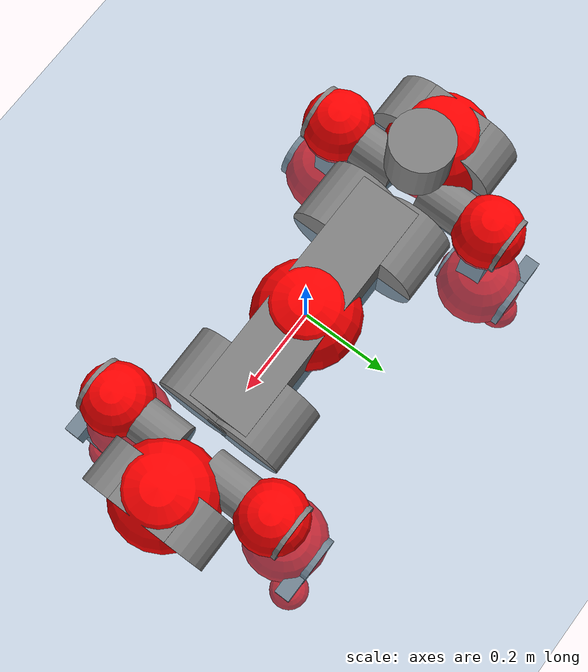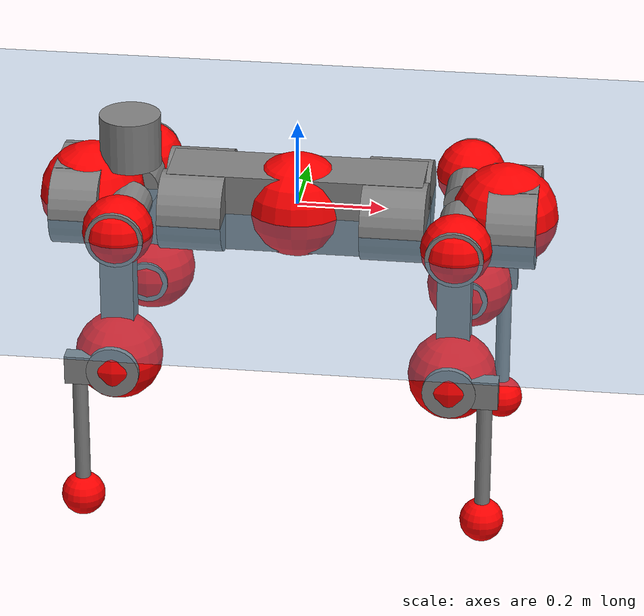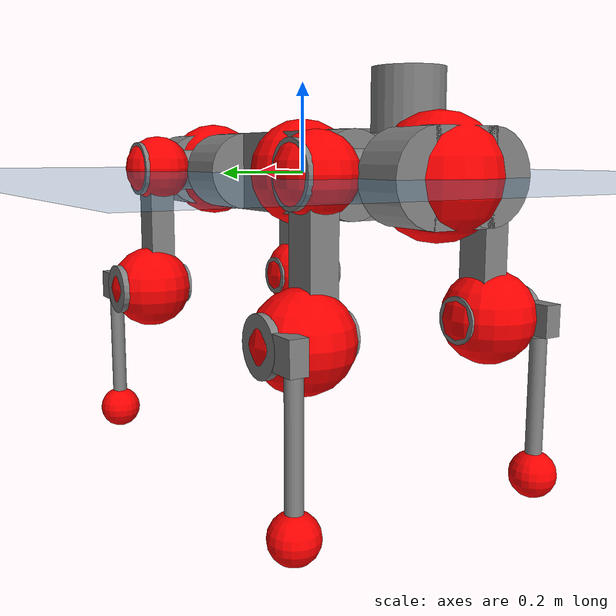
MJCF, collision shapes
<mujoco model="anymal_c">
  <compiler angle="radian" assetdir="assets" balanceinertia="true" inertiafromgeom="false"/>

  <option timestep="0.005" density="1.2" viscosity="2e-05"/>

  <size nkey="1"/>

  <visual>
    <quality shadowsize="8192"/>
    <map shadowclip="0.5"/>
  </visual>

  <default>
    <default class="/">
      <material specular="0" shininess="0.25"/>
      <geom contype="0" conaffinity="0" group="1" solref="-1000 -80"/>
      <site size="0.01 0.005 0.005" group="5"/>
      <general forcelimited="true" forcerange="-80 80" biastype="affine" gainprm="80" biasprm="0 -80 -2"/>
      <default class="anymal_c">
        <joint armature="0.01" damping="0.01" frictionloss="0.1"/>
        <default class="visual">
          <geom type="mesh" group="2"/>
          <default class="visual_zflip"/>
        </default>
        <default class="collision">
          <geom type="cylinder" group="3"/>
          <default class="foot">
            <geom size="0.03 0 0" type="sphere" condim="6" priority="1" friction="0.8 0.02 0.01" solimp="0.015 1 0.03"/>
          </default>
        </default>
      </default>
      <default class="reward_collision_sphere">
        <geom group="5" rgba="1 0 0 1"/>
      </default>
    </default>
  </default>

  <asset>
    <texture type="skybox" colorspace="auto" name="//unnamed_texture_0" builtin="gradient" rgb1="0.95 0.95 0.95" rgb2="0.95 0.95 0.95" width="100" height="600"/>
    <texture type="2d" colorspace="auto" name="texplane" builtin="checker" rgb1="0.345 0.575 0.748" rgb2="0.345 0.575 0.748" markrgb="1 1 1" width="512" height="512"/>
    <texture type="2d" colorspace="linear" name="base" file="base.png"/>
    <texture type="2d" colorspace="linear" name="top_shell" file="top_shell.png"/>
    <texture type="2d" colorspace="linear" name="bottom_shell" file="bottom_shell.png"/>
    <texture type="2d" colorspace="linear" name="remote" file="remote.png"/>
    <texture type="2d" colorspace="linear" name="hatch" file="hatch.png"/>
    <texture type="2d" colorspace="linear" name="handle" file="handle.png"/>
    <texture type="2d" colorspace="linear" name="face" file="face.png"/>
    <texture type="2d" colorspace="linear" name="battery" file="battery.png"/>
    <texture type="2d" colorspace="linear" name="lidar_cage" file="lidar_cage.png"/>
    <texture type="2d" colorspace="linear" name="depth_camera" file="depth_camera.png"/>
    <texture type="2d" colorspace="linear" name="wide_angle_camera" file="wide_angle_camera.png"/>
    <texture type="2d" colorspace="linear" name="lidar" file="lidar.png"/>
    <texture type="2d" colorspace="linear" name="drive" file="drive.png"/>
    <texture type="2d" colorspace="linear" name="hip_l" file="hip_l.png"/>
    <texture type="2d" colorspace="linear" name="shank_l" file="shank_l.png"/>
    <texture type="2d" colorspace="linear" name="foot" file="foot.png"/>
    <texture type="2d" colorspace="linear" name="thigh" file="thigh.png"/>
    <texture type="2d" colorspace="linear" name="shank_r" file="shank_r.png"/>
    <texture type="2d" colorspace="linear" name="hip_r" file="hip_r.png"/>
    <material name="MatPlane" class="/" texture="texplane" texuniform="true" texrepeat="2 2" specular="0.9" shininess="0.5"/>
    <material name="black_plastic" class="/" rgba="0.007 0.007 0.007 1"/>
    <material name="green" class="/" rgba="0.052 0.178 0.033 1"/>
    <material name="red" class="/" rgba="0.178 0.006 0.005 1"/>
    <material name="yellow" class="/" rgba="0.178 0.119 0.006 1"/>
    <material name="lwl" class="/" rgba="0.8 0.8 0.8 1"/>
    <material name="base" class="/" texture="base"/>
    <material name="top_shell" class="/" texture="top_shell"/>
    <material name="bottom_shell" class="/" texture="bottom_shell"/>
    <material name="hip_l" class="/" texture="hip_l"/>
    <material name="thigh" class="/" texture="thigh"/>
    <material name="shank_l" class="/" texture="shank_l"/>
    <material name="foot" class="/" texture="foot"/>
    <material name="hip_r" class="/" texture="hip_r"/>
    <material name="shank" class="/" texture="shank_r"/>
    <material name="hatch" class="/" texture="hatch"/>
    <material name="remote" class="/" texture="remote"/>
    <material name="handle" class="/" texture="handle"/>
    <material name="face" class="/" texture="face"/>
    <material name="depth_camera" class="/" texture="depth_camera"/>
    <material name="wide_angle_camera" class="/" texture="wide_angle_camera"/>
    <material name="battery" class="/" texture="battery"/>
    <material name="lidar_cage" class="/" texture="lidar_cage"/>
    <material name="lidar" class="/" texture="lidar"/>
    <material name="drive" class="/" texture="drive"/>
    <mesh name="base_0" class="/" file="base_0.obj"/>
    <mesh name="base_1" class="/" file="base_1.obj"/>
    <mesh name="base_2" class="/" file="base_2.obj"/>
    <mesh name="base_3" class="/" file="base_3.obj"/>
    <mesh name="base_4" class="/" file="base_4.obj"/>
    <mesh name="base_5" class="/" file="base_5.obj"/>
    <mesh name="top_shell" class="/" file="top_shell.obj"/>
    <mesh name="bottom_shell" class="/" file="bottom_shell.obj"/>
    <mesh name="remote" class="/" file="remote.obj"/>
    <mesh name="handle" class="/" file="handle.obj"/>
    <mesh name="face" class="/" file="face.obj"/>
    <mesh name="wide_angle_camera" class="/" file="wide_angle_camera.obj"/>
    <mesh name="depth_camera" class="/" file="depth_camera.obj"/>
    <mesh name="battery" class="/" file="battery.obj"/>
    <mesh name="lidar_cage" class="/" file="lidar_cage.obj"/>
    <mesh name="lidar" class="/" file="lidar.obj"/>
    <mesh name="drive" class="/" file="drive.obj"/>
    <mesh name="hip_l" class="/" file="hip_l.obj"/>
    <mesh name="thigh" class="/" file="thigh.obj"/>
    <mesh name="shank_l" class="/" file="shank_l.obj"/>
    <mesh name="foot" class="/" file="foot.obj"/>
    <mesh name="hip_r" class="/" file="hip_r.obj"/>
    <mesh name="hatch" class="/" file="hatch.obj"/>
    <mesh name="shank_r" class="/" file="shank_r.obj"/>
  </asset>

  <worldbody>
    <geom name="floor" class="/" size="100 100 0.125" type="plane" group="0" material="MatPlane"/>
    <light name="toplight_shadow" class="/" pos="0 0 5" dir="0.0990148 0.0990148 -0.990148" type="directional" ambient="0.04 0.04 0.04" diffuse="0.55 0.55 0.55" specular="0.12 0.12 0.12"/>
    <light name="toplight_fill" class="/" pos="0 0 5" dir="0.0990148 0.0990148 -0.990148" type="directional" castshadow="false" ambient="0.04 0.04 0.04" diffuse="0.3 0.3 0.3" specular="0.08 0.08 0.08"/>
    <body name="trunk" childclass="anymal_c" pos="-0.000181211 0.000851697 -8.25812e-05" quat="1 -0.000388859 -3.82881e-05 -0.000157882">
      <inertial pos="0.00340236 -0.000941051 0.0509782" quat="0.500702 0.503242 0.497479 0.498558" mass="18.6098" diaginertia="0.788922 0.360519 0.270868"/>
      <joint name="//unnamed_joint_0" type="free" armature="0" damping="0" frictionloss="0"/>
      <geom name="//unnamed_geom_1" class="visual" material="green" mesh="base_0"/>
      <geom name="//unnamed_geom_2" class="visual" material="yellow" mesh="base_1"/>
      <geom name="//unnamed_geom_3" class="visual" material="red" mesh="base_2"/>
      <geom name="//unnamed_geom_4" class="visual" material="black_plastic" mesh="base_3"/>
      <geom name="//unnamed_geom_5" class="visual" material="lwl" mesh="base_4"/>
      <geom name="//unnamed_geom_6" class="visual" material="base" mesh="base_5"/>
      <geom name="trunk_1" class="collision" size="0.289728 0.0699344 0.0899156" type="box"/>
      <geom name="trunk_2" class="collision" size="0.0899156 0.072432" pos="0.228019 0.0629565 0" quat="0.707107 0 0.707107 0"/>
      <geom name="trunk_3" class="collision" size="0.0899156 0.072432" pos="-0.228019 0.0629565 0" quat="0.707107 0 0.707107 0"/>
      <geom name="trunk_4" class="collision" size="0.0899156 0.072432" pos="0.228019 -0.0629565 0" quat="0.707107 0 0.707107 0"/>
      <geom name="trunk_5" class="collision" size="0.0899156 0.072432" pos="-0.228019 -0.0629565 0" quat="0.707107 0 0.707107 0"/>
      <geom name="//unnamed_geom_12" class="visual" material="top_shell" mesh="top_shell"/>
      <geom name="//unnamed_geom_13" class="visual" material="bottom_shell" mesh="bottom_shell"/>
      <geom name="//unnamed_geom_14" class="visual" material="remote" mesh="remote"/>
      <geom name="//unnamed_geom_15" class="visual" material="handle" mesh="handle"/>
      <geom name="//unnamed_geom_16" class="visual" pos="0.434547 0 0" quat="1 0 0 0" material="face" mesh="face"/>
      <geom name="trunk_6" class="collision" size="0.0549484 0.0699344 0.0899156" pos="0.492207 0 0" type="box"/>
      <geom name="//unnamed_geom_18" class="collision" size="0.0899156 0.0549484" pos="0.492207 0.0629565 0" quat="0.707107 0 0.707107 0"/>
      <geom name="//unnamed_geom_19" class="collision" size="0.0899156 0.0549484" pos="0.492207 -0.0629565 0" quat="0.707107 0 0.707107 0"/>
      <geom name="//unnamed_geom_20" class="visual" pos="0.483978 0 -0.0306519" quat="0.965926 0 0.258819 0" material="depth_camera" mesh="depth_camera"/>
      <geom name="//unnamed_geom_21" class="visual" pos="0.537811 0 0.0157102" material="wide_angle_camera" mesh="wide_angle_camera"/>
      <geom name="//unnamed_geom_22" class="visual_zflip" pos="-0.434547 0 0" quat="0 0 0 1" material="face" mesh="face"/>
      <geom name="trunk_7" class="collision" size="0.0549484 0.0699344 0.0899156" pos="-0.492207 0 0" quat="0 0 0 1" type="box"/>
      <geom name="//unnamed_geom_24" class="collision" size="0.0899156 0.0549484" pos="-0.492207 -0.0629565 0" quat="0 -0.707107 0 0.707107"/>
      <geom name="//unnamed_geom_25" class="collision" size="0.0899156 0.0549484" pos="-0.492207 0.0629565 0" quat="0 -0.707107 0 0.707107"/>
      <geom name="//unnamed_geom_26" class="visual" pos="-0.483978 0 -0.0306519" quat="0 -0.258819 0 0.965926" material="depth_camera" mesh="depth_camera"/>
      <geom name="//unnamed_geom_27" class="visual_zflip" pos="-0.537811 0 0.0157102" quat="0 0 0 1" material="wide_angle_camera" mesh="wide_angle_camera"/>
      <geom name="//unnamed_geom_28" class="visual" material="battery" mesh="battery"/>
      <geom name="//unnamed_geom_29" class="visual" pos="0 0.0668116 0.0304781" quat="0.683013 -0.183013 0.183013 0.683013" material="depth_camera" mesh="depth_camera"/>
      <geom name="//unnamed_geom_30" class="visual" pos="0 -0.0668116 0.0304781" quat="0.683013 0.183013 0.183013 -0.683013" material="depth_camera" mesh="depth_camera"/>
      <geom name="//unnamed_geom_31" class="visual" pos="-0.381605 0 0.077134" quat="1 0 0 0" material="lidar_cage" mesh="lidar_cage"/>
      <geom name="trunk_8" class="collision" size="0.0699344 0.0599437" pos="-0.381605 0 0.140101"/>
      <geom name="//unnamed_geom_33" class="visual" pos="-0.381605 -5.85326e-05 0.149231" quat="0.707107 0 0 -0.707107" material="lidar" mesh="lidar"/>
      <geom name="//unnamed_geom_34" class="visual" pos="0.314405 0.0935887 -2.58861e-09" quat="0.258819 0.965926 0 0" material="drive" mesh="drive"/>
      <geom name="//unnamed_geom_35" class="visual" pos="0.314405 -0.0935887 2.58861e-09" quat="0.258819 -0.965926 0 0" material="drive" mesh="drive"/>
      <geom name="//unnamed_geom_36" class="visual" pos="-0.314405 0.0935887 2.58861e-09" quat="0 0 0.965926 -0.258819" material="drive" mesh="drive"/>
      <geom name="//unnamed_geom_37" class="visual" pos="-0.314405 -0.0935887 -2.58861e-09" quat="0 0 -0.965926 -0.258819" material="drive" mesh="drive"/>
      <geom name="//unnamed_geom_38" class="visual" pos="0.12161 0 0.0766093" quat="1 0 0 0" material="hatch" mesh="hatch"/>
      <geom name="//unnamed_geom_39" class="reward_collision_sphere" size="0.119887"/>
      <geom name="//unnamed_geom_40" class="reward_collision_sphere" size="0.119887" pos="0.471764 0 0"/>
      <geom name="//unnamed_geom_41" class="reward_collision_sphere" size="0.119887" pos="-0.471764 0 0"/>
      <site name="imu" pos="0.261064 0.00594474 0.0470035" size="0.00999062"/>
      <camera name="track" pos="0 -1.79876 0" quat="0.707107 0.707107 0 0" mode="trackcom"/>
      <camera name="ego_camera" pos="0.471764 0 -0.0419777" quat="-0.5 -0.5 0.5 0.5"/>
      <body name="LF_HIP" pos="0.31495 0.0939711 -0.00011568" quat="0.258882 0.965909 -0.000101424 4.4435e-05">
        <inertial pos="0.0593983 -0.0130534 -0.00870695" quat="-0.130027 0.70977 -0.14083 0.677854" mass="2.78985" diaginertia="0.0074913 0.00293752 0.00422999"/>
        <joint name="LF_HAA" pos="0 0 0" axis="1 -0.000344531 0.000440214" range="-0.702707 0.478873" armature="0.0101258" damping="0.00885941" frictionloss="0.0989345"/>
        <geom name="//unnamed_geom_42" class="visual" pos="0 -0.000152276 2.50112e-05" quat="0.258819 -0.965926 0 0" material="hip_l" mesh="hip_l"/>
        <geom name="//unnamed_geom_43" class="visual" pos="0.0627971 -0.0741837 -0.0439399" quat="0.183013 -0.683013 0.683013 0.183013" material="drive" mesh="drive"/>
        <geom name="//unnamed_geom_44" class="collision" size="0.0499531 0.0699344" pos="0.0627971 -0.0107564 -0.0072464" quat="-0.353553 -0.612372 0.612372 -0.353553"/>
        <body name="LF_THIGH" pos="0.0628732 -0.0664832 -0.0443554" quat="0.182988 -0.683105 0.682811 0.183444">
          <inertial pos="0.0322948 0.00105267 -0.2582" quat="0.993375 -0.0046258 -0.0786929 0.0836192" mass="3.03514" diaginertia="0.0383579 0.0177824 0.00533714"/>
          <joint name="LF_HFE" pos="0 0 0" axis="0.999996 -0.00091209 0.0025048" range="-3.12798 3.13003" armature="0.0104119" damping="0.0112744" frictionloss="0.104429"/>
          <geom name="//unnamed_geom_45" class="visual" pos="0.00296423 4.67094e-06 0" quat="0.707107 0 0 -0.707107" material="thigh" mesh="thigh"/>
          <geom name="//unnamed_geom_46" class="collision" size="0.064939 0.0399625" pos="0.0419346 0 0" quat="0.5 0.5 -0.5 -0.5"/>
          <geom name="//unnamed_geom_47" class="collision" size="0.0374648 0.0299719 0.141181" pos="0.031451 0 -0.148301" quat="0.707107 0 0 -0.707107" type="box"/>
          <geom name="//unnamed_geom_48" class="visual" pos="0.105151 0 -0.299091" quat="1 0 0 0" material="drive" mesh="drive"/>
          <geom name="//unnamed_geom_49" class="collision" size="0.0499531 0.0699344" pos="0.0317655 0 -0.299091" quat="0.707107 0 0.707107 0"/>
          <geom name="//unnamed_geom_50" class="reward_collision_sphere" size="0.079925" pos="0.0262091 0 0"/>
          <body name="LF_SHANK" pos="0.105385 -0.000270236 -0.300351" quat="1 2.13e-06 -3.65969e-08 -4.0053e-06">
            <inertial pos="0.00562033 -0.0541729 -0.0843215" quat="0.99286 -0.116666 -0.00134312 -0.0248412" mass="0.592568" diaginertia="0.0130301 0.00552249 0.00144163"/>
            <joint name="LF_KFE" pos="0 0 0" axis="1 -0.000363996 0.000637624" range="-3.12156 3.12961" armature="0.0104739" damping="0.00566878" frictionloss="0.099788"/>
            <geom name="//unnamed_geom_51" class="visual" pos="0.000966572 0.00515381 0" quat="0.707107 0 0 -0.707107" material="shank_l" mesh="shank_l"/>
            <geom name="LF_kfe_act" class="collision" size="0.0599437 0.0199812" pos="0.0209673 0 0" quat="0.5 0.5 -0.5 -0.5"/>
            <geom name="//unnamed_geom_53" class="collision" size="0.0574451 0.0337183 0.0189822" pos="0.0209673 -0.0517134 0" quat="0.5 0.5 -0.5 -0.5" type="box"/>
            <geom name="//unnamed_geom_54" class="visual" pos="0.0136809 -0.0774395 -0.35468" quat="0.382683 0 0 -0.92388" material="foot" mesh="foot"/>
            <geom name="LF_calf" class="collision" size="0.0174836 0.14112" pos="0.0136812 -0.0791004 -0.17734" quat="0.707107 0 0 -0.707107"/>
            <geom name="LF_foot" class="foot" size="0.0300461" pos="0.0136812 -0.0791004 -0.331068" quat="0.707107 0 0 -0.707107"/>
            <geom name="//unnamed_geom_57" class="reward_collision_sphere" size="0.0999062" pos="-0.0524183 0 0"/>
            <geom name="//unnamed_geom_58" class="reward_collision_sphere" size="0.0499531" pos="0.0136812 -0.0791004 -0.331068"/>
            <site name="LF_foot" class="foot" pos="0.0136812 -0.0791004 -0.331068" quat="0.707107 0 0 -0.707107" size="0.00999062"/>
          </body>
        </body>
      </body>
      <body name="RF_HIP" pos="0.314227 -0.0932507 -0.0011024" quat="0.258848 -0.965918 -7.95335e-05 5.35893e-06">
        <inertial pos="0.0593058 0.0135879 -0.00821142" quat="0.134596 0.679621 0.128192 0.709624" mass="2.78888" diaginertia="0.00750274 0.00289771 0.0041877"/>
        <joint name="RF_HAA" pos="0 0 0" axis="0.999995 0.00134299 0.00273745" range="-0.496808 0.721804" armature="0.010399" damping="0.00953603" frictionloss="0.101052"/>
        <geom name="//unnamed_geom_59" class="visual" pos="0 0.000152275 2.50112e-05" quat="0.258819 0.965926 0 0" material="hip_r" mesh="hip_r"/>
        <geom name="//unnamed_geom_60" class="visual" pos="0.0627971 0.0741837 -0.0439399" quat="0.183013 0.683013 0.683013 -0.183013" material="drive" mesh="drive"/>
        <geom name="//unnamed_geom_61" class="collision" size="0.0499531 0.0699344" pos="0.0627971 0.0107564 -0.0072464" quat="-0.353553 0.612372 0.612372 0.353553"/>
        <body name="RF_THIGH" pos="0.0634764 0.0660925 -0.045279" quat="0.18292 0.683078 0.682985 -0.182968">
          <inertial pos="0.0315621 0.000830324 -0.257083" quat="0.992725 -0.00552623 -0.0804319 0.0894312" mass="3.06896" diaginertia="0.0387087 0.017591 0.00532748"/>
          <joint name="RF_HFE" pos="0 0 0" axis="0.999998 -0.00175026 -0.000244236" stiffness="0.00773864" range="-3.14309 3.13541" armature="0.00994231" damping="0.00937977" frictionloss="0.104457"/>
          <geom name="//unnamed_geom_62" class="visual" pos="0.00296423 4.67094e-06 0" quat="0.707107 0 0 -0.707107" material="thigh" mesh="thigh"/>
          <geom name="//unnamed_geom_63" class="collision" size="0.064939 0.0399625" pos="0.0419346 0 0" quat="0.5 0.5 0.5 0.5"/>
          <geom name="//unnamed_geom_64" class="collision" size="0.0374648 0.0299719 0.141181" pos="0.031451 0 -0.148301" quat="0.707107 0 0 0.707107" type="box"/>
          <geom name="//unnamed_geom_65" class="visual" pos="0.105151 0 -0.299091" quat="1 0 0 0" material="drive" mesh="drive"/>
          <geom name="//unnamed_geom_66" class="collision" size="0.0499531 0.0699344" pos="0.0317655 0 -0.299091" quat="0.707107 0 0.707107 0"/>
          <geom name="//unnamed_geom_67" class="reward_collision_sphere" size="0.079925" pos="0.0262091 0 0"/>
          <body name="RF_SHANK" pos="0.105161 -6.11917e-05 -0.298097" quat="1 0.000215712 -0.000123486 2.20178e-05">
            <inertial pos="0.00687241 0.0542734 -0.0847435" quat="0.993108 0.114159 0.000506247 0.0265375" mass="0.593619" diaginertia="0.0130741 0.00544444 0.0014571"/>
            <joint name="RF_KFE" pos="0 0 0" axis="0.999997 -0.00218067 0.00104603" range="-3.14572 3.14303" armature="0.00979172" damping="0.00185983" frictionloss="0.10118"/>
            <geom name="//unnamed_geom_68" class="visual" pos="0.000966567 -0.0051538 0" quat="0.707107 0 0 0.707107" material="shank" mesh="shank_r"/>
            <geom name="RF_kfe_act" class="collision" size="0.0599437 0.0199812" pos="0.0209673 0 0" quat="0.5 0.5 0.5 0.5"/>
            <geom name="//unnamed_geom_70" class="collision" size="0.0574451 0.0337183 0.0189822" pos="0.0209673 0.0517134 0" quat="0.5 0.5 0.5 0.5" type="box"/>
            <geom name="//unnamed_geom_71" class="visual" pos="0.0136814 0.0774395 -0.35468" quat="0.382683 0 0 0.92388" material="foot" mesh="foot"/>
            <geom name="RF_calf" class="collision" size="0.0174836 0.14112" pos="0.0136812 0.0791004 -0.17734" quat="0.707107 0 0 0.707107"/>
            <geom name="RF_foot" class="foot" size="0.0277021" pos="0.0136812 0.0791004 -0.331068" quat="0.707107 0 0 0.707107"/>
            <geom name="//unnamed_geom_74" class="reward_collision_sphere" size="0.0999062" pos="-0.0524183 0 0"/>
            <geom name="//unnamed_geom_75" class="reward_collision_sphere" size="0.0499531" pos="0.0136812 0.0791004 -0.331068"/>
            <site name="RF_foot" class="foot" pos="0.0136812 0.0791004 -0.331068" quat="0.707107 0 0 0.707107" size="0.00999062"/>
          </body>
        </body>
      </body>
      <body name="LH_HIP" pos="-0.313921 0.0928625 -0.000174237" quat="-0.000104229 -2.65991e-05 0.965924 -0.258824">
        <inertial pos="0.0600464 0.0130991 -0.00963609" quat="0.134962 0.678601 0.130179 0.710168" mass="2.75034" diaginertia="0.00740761 0.00293767 0.00416035"/>
        <joint name="LH_HAA" pos="0 0 0" axis="0.999996 -0.00180545 -0.00195663" range="-0.499079 0.724142" armature="0.00974709" damping="0.00974263" frictionloss="0.0971866"/>
        <geom name="//unnamed_geom_76" class="visual" pos="0 0.000152275 2.50112e-05" quat="-0.258819 -0.965926 0 0" material="hip_r" mesh="hip_r"/>
        <geom name="//unnamed_geom_77" class="visual" pos="0.0627971 0.0741837 -0.0439399" quat="0.183013 0.683013 0.683013 -0.183013" material="drive" mesh="drive"/>
        <geom name="//unnamed_geom_78" class="collision" size="0.0499531 0.0699344" pos="0.0627971 0.0107564 -0.0072464" quat="-0.353553 0.612372 0.612372 0.353553"/>
        <body name="LH_THIGH" pos="0.0622394 0.0658313 -0.0449076" quat="0.18286 0.683 0.682949 -0.183448">
          <inertial pos="0.0321501 0.00105801 -0.25784" quat="0.99308 -0.00383815 -0.0792309 0.0866027" mass="3.03121" diaginertia="0.038704 0.0173784 0.00532691"/>
          <joint name="LH_HFE" pos="0 0 0" axis="0.999992 -0.00165871 -0.0037667" range="-3.14783 3.1456" armature="0.00955777" damping="0.00548131" frictionloss="0.104433"/>
          <geom name="//unnamed_geom_79" class="visual" pos="0.00296423 4.67094e-06 0" quat="0.707107 0 0 -0.707107" material="thigh" mesh="thigh"/>
          <geom name="//unnamed_geom_80" class="collision" size="0.064939 0.0399625" pos="0.0419346 0 0" quat="0.5 0.5 -0.5 -0.5"/>
          <geom name="//unnamed_geom_81" class="collision" size="0.0374648 0.0299719 0.141181" pos="0.031451 0 -0.148301" quat="0.707107 0 0 -0.707107" type="box"/>
          <geom name="//unnamed_geom_82" class="visual" pos="0.105151 0 -0.299091" quat="1 0 0 0" material="drive" mesh="drive"/>
          <geom name="//unnamed_geom_83" class="collision" size="0.0499531 0.0699344" pos="0.0317655 0 -0.299091" quat="0.707107 0 0.707107 0"/>
          <geom name="//unnamed_geom_84" class="reward_collision_sphere" size="0.079925" pos="0.0262091 0 0"/>
          <body name="LH_SHANK" pos="0.105643 -0.00061713 -0.300021" quat="1 -0.000386978 0.00027853 2.80783e-05">
            <inertial pos="0.00581343 0.054638 -0.0844984" quat="0.992761 0.117281 -0.00075284 0.0258731" mass="0.58901" diaginertia="0.0130578 0.0055113 0.00144142"/>
            <joint name="LH_KFE" pos="0 0 0" axis="0.999996 0.00019196 0.00266968" range="-3.13052 3.13977" armature="0.0104662" damping="0.00559775" frictionloss="0.104366"/>
            <geom name="//unnamed_geom_85" class="visual" pos="0.000966567 -0.0051538 0" quat="-0.707107 0 0 -0.707107" material="shank" mesh="shank_r"/>
            <geom name="LH_kfe_act" class="collision" size="0.0599437 0.0199812" pos="0.0209673 0 0" quat="0.5 0.5 -0.5 -0.5"/>
            <geom name="//unnamed_geom_87" class="collision" size="0.0574451 0.0337183 0.0189822" pos="0.0209673 0.0517134 0" quat="0.5 0.5 -0.5 -0.5" type="box"/>
            <geom name="//unnamed_geom_88" class="visual" pos="0.0136814 0.0774395 -0.35468" quat="-0.382683 0 0 -0.92388" material="foot" mesh="foot"/>
            <geom name="LH_calf" class="collision" size="0.0174836 0.14112" pos="0.0136812 0.0791004 -0.17734" quat="0.707107 0 0 -0.707107"/>
            <geom name="LH_foot" class="foot" size="0.0317087" pos="0.0136812 0.0791004 -0.331068" quat="0.707107 0 0 -0.707107"/>
            <geom name="//unnamed_geom_91" class="reward_collision_sphere" size="0.0999062" pos="-0.0524183 0 0"/>
            <geom name="//unnamed_geom_92" class="reward_collision_sphere" size="0.0499531" pos="0.0136812 0.0791004 -0.331068"/>
            <site name="LH_foot" class="foot" pos="0.0136812 0.0791004 -0.331068" quat="0.707107 0 0 -0.707107" size="0.00999062"/>
          </body>
        </body>
      </body>
      <body name="RH_HIP" pos="-0.315214 -0.0931444 0.000327808" quat="-0.000182539 0.000444769 -0.965802 -0.25928">
        <inertial pos="0.0591001 -0.0139761 -0.0092925" quat="-0.127247 0.709416 -0.135027 0.67993" mass="2.79708" diaginertia="0.00749292 0.0029266 0.00429296"/>
        <joint name="RH_HAA" pos="0 0 0" axis="1 9.26948e-05 -5.60227e-05" range="-0.733264 0.476683" armature="0.0101392" damping="0.0119641" frictionloss="0.0953707"/>
        <geom name="//unnamed_geom_93" class="visual" pos="0 -0.000152276 2.50112e-05" quat="-0.258819 0.965926 0 0" material="hip_l" mesh="hip_l"/>
        <geom name="//unnamed_geom_94" class="visual" pos="0.0627971 -0.0741837 -0.0439399" quat="-0.183013 0.683013 -0.683013 -0.183013" material="drive" mesh="drive"/>
        <geom name="//unnamed_geom_95" class="collision" size="0.0499531 0.0699344" pos="0.0627971 -0.0107564 -0.0072464" quat="0.353553 0.612372 -0.612372 0.353553"/>
        <body name="RH_THIGH" pos="0.0635128 -0.0661523 -0.0444148" quat="-0.182789 0.682949 -0.683101 -0.183147">
          <inertial pos="0.0326453 0.000551268 -0.257353" quat="0.993033 -0.004958 -0.0803555 0.0860405" mass="3.08465" diaginertia="0.0385059 0.0176443 0.00541482"/>
          <joint name="RH_HFE" pos="0 0 0" axis="0.999999 0.00074727 -0.000856078" range="-3.14635 3.16523" armature="0.00958998" damping="0.00652557" frictionloss="0.101309"/>
          <geom name="//unnamed_geom_96" class="visual" pos="0.00296423 4.67094e-06 0" quat="0.707107 0 0 -0.707107" material="thigh" mesh="thigh"/>
          <geom name="//unnamed_geom_97" class="collision" size="0.064939 0.0399625" pos="0.0419346 0 0" quat="0.5 0.5 0.5 0.5"/>
          <geom name="//unnamed_geom_98" class="collision" size="0.0374648 0.0299719 0.141181" pos="0.031451 0 -0.148301" quat="0.707107 0 0 0.707107" type="box"/>
          <geom name="//unnamed_geom_99" class="visual" pos="0.105151 0 -0.299091" quat="1 0 0 0" material="drive" mesh="drive"/>
          <geom name="//unnamed_geom_100" class="collision" size="0.0499531 0.0699344" pos="0.0317655 0 -0.299091" quat="0.707107 0 0.707107 0"/>
          <geom name="//unnamed_geom_101" class="reward_collision_sphere" size="0.079925" pos="0.0262091 0 0"/>
          <body name="RH_SHANK" pos="0.104035 0.000384505 -0.298992" quat="1 2.76237e-06 3.92629e-05 2.22532e-05">
            <inertial pos="0.00672451 -0.0544784 -0.0846887" quat="0.992912 -0.115971 -0.000997542 -0.0259945" mass="0.581008" diaginertia="0.0129172 0.00538865 0.00142754"/>
            <joint name="RH_KFE" pos="0 0 0" axis="0.999977 -0.00556897 0.003873" stiffness="0.000498141" range="-3.11866 3.12121" armature="0.00991074" damping="0.00566908" frictionloss="0.0954614"/>
            <geom name="//unnamed_geom_102" class="visual" pos="0.000966572 0.00515381 0" quat="0.707107 0 0 -0.707107" material="shank_l" mesh="shank_l"/>
            <geom name="RH_kfe_act" class="collision" size="0.0599437 0.0199812" pos="0.0209673 0 0" quat="0.5 0.5 0.5 0.5"/>
            <geom name="//unnamed_geom_104" class="collision" size="0.0574451 0.0337183 0.0189822" pos="0.0209673 -0.0517134 0" quat="0.5 0.5 0.5 0.5" type="box"/>
            <geom name="//unnamed_geom_105" class="visual" pos="0.0136809 -0.0774395 -0.35468" quat="0.382683 0 0 -0.92388" material="foot" mesh="foot"/>
            <geom name="RH_calf" class="collision" size="0.0174836 0.14112" pos="0.0136812 -0.0791004 -0.17734" quat="0.707107 0 0 0.707107"/>
            <geom name="RH_foot" class="foot" size="0.0284408" pos="0.0136812 -0.0791004 -0.331068" quat="0.707107 0 0 0.707107"/>
            <geom name="//unnamed_geom_108" class="reward_collision_sphere" size="0.0999062" pos="-0.0524183 0 0"/>
            <geom name="//unnamed_geom_109" class="reward_collision_sphere" size="0.0499531" pos="0.0136812 -0.0791004 -0.331068"/>
            <site name="RH_foot" class="foot" pos="0.0136812 -0.0791004 -0.331068" quat="0.707107 0 0 0.707107" size="0.00999062"/>
          </body>
        </body>
      </body>
    </body>
  </worldbody>

  <contact>
    <pair class="/" geom1="floor" geom2="LF_foot" name="//unnamed_contact_0"/>
    <pair class="/" geom1="floor" geom2="RF_foot" name="//unnamed_contact_1"/>
    <pair class="/" geom1="floor" geom2="LH_foot" name="//unnamed_contact_2"/>
    <pair class="/" geom1="floor" geom2="RH_foot" name="//unnamed_contact_3"/>
  </contact>

  <actuator>
    <general name="LF_HAA" class="/" joint="LF_HAA" forcerange="-77.9586 77.9586" gainprm="80.5168" biasprm="0 -80.5168 -1.8894"/>
    <general name="LF_HFE" class="/" joint="LF_HFE" forcerange="-79.9805 79.9805" gainprm="80.5168" biasprm="0 -80.5168 -1.8894"/>
    <general name="LF_KFE" class="/" joint="LF_KFE" forcerange="-79.8134 79.8134" gainprm="80.5168" biasprm="0 -80.5168 -1.8894"/>
    <general name="RF_HAA" class="/" joint="RF_HAA" forcerange="-83.0044 83.0044" gainprm="80.5168" biasprm="0 -80.5168 -1.8894"/>
    <general name="RF_HFE" class="/" joint="RF_HFE" forcerange="-81.1098 81.1098" gainprm="80.5168" biasprm="0 -80.5168 -1.8894"/>
    <general name="RF_KFE" class="/" joint="RF_KFE" forcerange="-82.1665 82.1665" gainprm="80.5168" biasprm="0 -80.5168 -1.8894"/>
    <general name="LH_HAA" class="/" joint="LH_HAA" forcerange="-79.4881 79.4881" gainprm="80.5168" biasprm="0 -80.5168 -1.8894"/>
    <general name="LH_HFE" class="/" joint="LH_HFE" forcerange="-80.6503 80.6503" gainprm="80.5168" biasprm="0 -80.5168 -1.8894"/>
    <general name="LH_KFE" class="/" joint="LH_KFE" forcerange="-80.052 80.052" gainprm="80.5168" biasprm="0 -80.5168 -1.8894"/>
    <general name="RH_HAA" class="/" joint="RH_HAA" forcerange="-82.1761 82.1761" gainprm="80.5168" biasprm="0 -80.5168 -1.8894"/>
    <general name="RH_HFE" class="/" joint="RH_HFE" forcerange="-79.1703 79.1703" gainprm="80.5168" biasprm="0 -80.5168 -1.8894"/>
    <general name="RH_KFE" class="/" joint="RH_KFE" forcerange="-80.6302 80.6302" gainprm="80.5168" biasprm="0 -80.5168 -1.8894"/>
  </actuator>

  <sensor>
    <gyro site="imu" name="imu_angular_velocity"/>
    <velocimeter site="imu" name="imu_linear_velocity"/>
    <framelinvel objtype="site" objname="LF_foot" name="LF_foot_global_linear_velocity"/>
    <framelinvel objtype="site" objname="RF_foot" name="RF_foot_global_linear_velocity"/>
    <framelinvel objtype="site" objname="LH_foot" name="LH_foot_global_linear_velocity"/>
    <framelinvel objtype="site" objname="RH_foot" name="RH_foot_global_linear_velocity"/>
  </sensor>

  <keyframe>
    <key name="home" qpos="0 0 0.55 1 0 0 0 0 0.4 -0.8 0 -0.4 0.8 0 -0.4 0.8 0 0.4 -0.8"/>
  </keyframe>
</mujoco>
